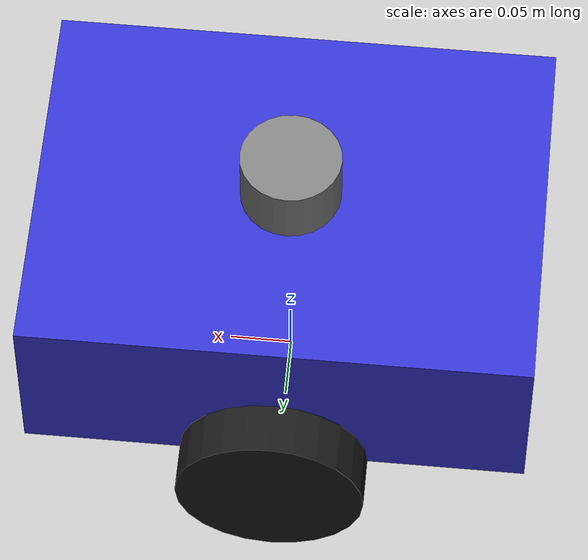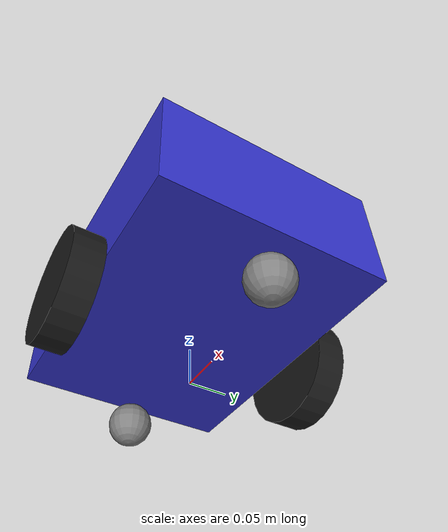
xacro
<?xml version="1.0"?>
<robot xmlns:xacro="http://www.ros.org/wiki/xacro" name="rover">

  <!-- Properties -->
  <xacro:property name="chassis_length" value="0.4"/>
  <xacro:property name="chassis_width" value="0.3"/>
  <xacro:property name="chassis_height" value="0.15"/>
  <xacro:property name="chassis_mass" value="5.0"/>

  <xacro:property name="wheel_radius" value="0.075"/>
  <xacro:property name="wheel_width" value="0.04"/>
  <xacro:property name="wheel_mass" value="0.5"/>
  <xacro:property name="wheel_separation" value="0.34"/>

  <xacro:property name="caster_radius" value="0.03"/>
  <xacro:property name="caster_mass" value="0.1"/>

  <xacro:property name="lidar_height" value="0.05"/>
  <xacro:property name="lidar_radius" value="0.04"/>

  <!-- Materials -->
  <material name="blue">
    <color rgba="0.2 0.2 0.8 1.0"/>
  </material>
  <material name="black">
    <color rgba="0.1 0.1 0.1 1.0"/>
  </material>
  <material name="grey">
    <color rgba="0.5 0.5 0.5 1.0"/>
  </material>

  <!-- Inertia macros -->
  <xacro:macro name="box_inertia" params="m x y z">
    <inertia ixx="${m*(y*y+z*z)/12}" ixy="0" ixz="0"
             iyy="${m*(x*x+z*z)/12}" iyz="0"
             izz="${m*(x*x+y*y)/12}"/>
  </xacro:macro>

  <xacro:macro name="cylinder_inertia" params="m r h">
    <inertia ixx="${m*(3*r*r+h*h)/12}" ixy="0" ixz="0"
             iyy="${m*(3*r*r+h*h)/12}" iyz="0"
             izz="${m*r*r/2}"/>
  </xacro:macro>

  <xacro:macro name="sphere_inertia" params="m r">
    <inertia ixx="${2*m*r*r/5}" ixy="0" ixz="0"
             iyy="${2*m*r*r/5}" iyz="0"
             izz="${2*m*r*r/5}"/>
  </xacro:macro>

  <!-- Base footprint - on the ground -->
  <link name="base_footprint"/>

  <!-- Base link - center of chassis -->
  <link name="base_link">
    <visual>
      <geometry>
        <box size="${chassis_length} ${chassis_width} ${chassis_height}"/>
      </geometry>
      <material name="blue"/>
    </visual>
    <collision>
      <geometry>
        <box size="${chassis_length} ${chassis_width} ${chassis_height}"/>
      </geometry>
    </collision>
    <inertial>
      <mass value="${chassis_mass}"/>
      <xacro:box_inertia m="${chassis_mass}" x="${chassis_length}" y="${chassis_width}" z="${chassis_height}"/>
    </inertial>
  </link>

  <joint name="base_footprint_joint" type="fixed">
    <parent link="base_footprint"/>
    <child link="base_link"/>
    <origin xyz="0 0 ${wheel_radius + chassis_height/2}" rpy="0 0 0"/>
  </joint>

  <!-- Wheel macro -->
  <xacro:macro name="wheel" params="prefix y_offset">
    <link name="${prefix}_wheel">
      <visual>
        <geometry>
          <cylinder radius="${wheel_radius}" length="${wheel_width}"/>
        </geometry>
        <origin xyz="0 0 0" rpy="${pi/2} 0 0"/>
        <material name="black"/>
      </visual>
      <collision>
        <geometry>
          <cylinder radius="${wheel_radius}" length="${wheel_width}"/>
        </geometry>
        <origin xyz="0 0 0" rpy="${pi/2} 0 0"/>
      </collision>
      <inertial>
        <mass value="${wheel_mass}"/>
        <origin xyz="0 0 0" rpy="${pi/2} 0 0"/>
        <xacro:cylinder_inertia m="${wheel_mass}" r="${wheel_radius}" h="${wheel_width}"/>
      </inertial>
    </link>

    <joint name="${prefix}_wheel_joint" type="continuous">
      <parent link="base_link"/>
      <child link="${prefix}_wheel"/>
      <origin xyz="0 ${y_offset} ${-chassis_height/2}" rpy="0 0 0"/>
      <axis xyz="0 1 0"/>
      <dynamics damping="0.1" friction="0.1"/>
    </joint>
  </xacro:macro>

  <!-- Create wheels -->
  <xacro:wheel prefix="left" y_offset="${wheel_separation/2}"/>
  <xacro:wheel prefix="right" y_offset="${-wheel_separation/2}"/>

  <!-- Front caster wheel -->
  <link name="front_caster">
    <visual>
      <geometry>
        <sphere radius="${caster_radius}"/>
      </geometry>
      <material name="grey"/>
    </visual>
    <collision>
      <geometry>
        <sphere radius="${caster_radius}"/>
      </geometry>
    </collision>
    <inertial>
      <mass value="${caster_mass}"/>
      <xacro:sphere_inertia m="${caster_mass}" r="${caster_radius}"/>
    </inertial>
  </link>

  <joint name="front_caster_joint" type="fixed">
    <parent link="base_link"/>
    <child link="front_caster"/>
    <origin xyz="${chassis_length/2 - caster_radius} 0 ${-chassis_height/2 - wheel_radius + caster_radius}" rpy="0 0 0"/>
  </joint>

  <!-- Rear caster wheel -->
  <link name="rear_caster">
    <visual>
      <geometry>
        <sphere radius="${caster_radius}"/>
      </geometry>
      <material name="grey"/>
    </visual>
    <collision>
      <geometry>
        <sphere radius="${caster_radius}"/>
      </geometry>
    </collision>
    <inertial>
      <mass value="${caster_mass}"/>
      <xacro:sphere_inertia m="${caster_mass}" r="${caster_radius}"/>
    </inertial>
  </link>

  <joint name="rear_caster_joint" type="fixed">
    <parent link="base_link"/>
    <child link="rear_caster"/>
    <origin xyz="${-chassis_length/2 + caster_radius} 0 ${-chassis_height/2 - wheel_radius + caster_radius}" rpy="0 0 0"/>
  </joint>

  <!-- LiDAR sensor link -->
  <link name="laser_frame">
    <visual>
      <geometry>
        <cylinder radius="${lidar_radius}" length="${lidar_height}"/>
      </geometry>
      <material name="grey"/>
    </visual>
    <collision>
      <geometry>
        <cylinder radius="${lidar_radius}" length="${lidar_height}"/>
      </geometry>
    </collision>
    <inertial>
      <mass value="0.2"/>
      <xacro:cylinder_inertia m="0.2" r="${lidar_radius}" h="${lidar_height}"/>
    </inertial>
  </link>

  <joint name="laser_joint" type="fixed">
    <parent link="base_link"/>
    <child link="laser_frame"/>
    <origin xyz="0 0 ${chassis_height/2 + lidar_height/2}" rpy="0 0 0"/>
  </joint>

  <!-- ==================== Gazebo Harmonic (gz-sim) Configuration ==================== -->

  <!-- Gazebo material colors -->
  <gazebo reference="base_link">
    <material>Gazebo/Blue</material>
  </gazebo>
  <gazebo reference="left_wheel">
    <material>Gazebo/Black</material>
    <mu1>1.0</mu1>
    <mu2>1.0</mu2>
  </gazebo>
  <gazebo reference="right_wheel">
    <material>Gazebo/Black</material>
    <mu1>1.0</mu1>
    <mu2>1.0</mu2>
  </gazebo>
  <gazebo reference="front_caster">
    <material>Gazebo/Grey</material>
    <mu1>0.0</mu1>
    <mu2>0.0</mu2>
  </gazebo>
  <gazebo reference="rear_caster">
    <material>Gazebo/Grey</material>
    <mu1>0.0</mu1>
    <mu2>0.0</mu2>
  </gazebo>
  <gazebo reference="laser_frame">
    <material>Gazebo/Grey</material>
  </gazebo>

  <!-- Differential Drive Plugin for Gazebo Harmonic -->
  <gazebo>
    <plugin filename="gz-sim-diff-drive-system" name="gz::sim::systems::DiffDrive">
      <left_joint>left_wheel_joint</left_joint>
      <right_joint>right_wheel_joint</right_joint>
      <wheel_separation>${wheel_separation}</wheel_separation>
      <wheel_radius>${wheel_radius}</wheel_radius>
      <max_linear_acceleration>1.0</max_linear_acceleration>
      <max_angular_acceleration>2.0</max_angular_acceleration>
      <odom_publish_frequency>50</odom_publish_frequency>
      <!-- Topics in gz namespace, will be bridged to ROS -->
      <topic>cmd_vel</topic>
      <odom_topic>odom</odom_topic>
      <tf_topic>tf</tf_topic>
      <frame_id>odom</frame_id>
      <child_frame_id>base_footprint</child_frame_id>
    </plugin>
  </gazebo>

  <!-- Joint State Publisher Plugin -->
  <gazebo>
    <plugin filename="gz-sim-joint-state-publisher-system" name="gz::sim::systems::JointStatePublisher">
      <joint_name>left_wheel_joint</joint_name>
      <joint_name>right_wheel_joint</joint_name>
      <topic>joint_states</topic>
    </plugin>
  </gazebo>

  <!-- Pose Publisher Plugin for Ground Truth -->
  <gazebo>
    <plugin filename="gz-sim-pose-publisher-system" name="gz::sim::systems::PosePublisher">
      <publish_link_pose>false</publish_link_pose>
      <publish_collision_pose>false</publish_collision_pose>
      <publish_visual_pose>false</publish_visual_pose>
      <publish_nested_model_pose>false</publish_nested_model_pose>
      <publish_model_pose>true</publish_model_pose>
      <update_frequency>50</update_frequency>
    </plugin>
  </gazebo>

  <!-- 2D LiDAR Sensor -->
  <gazebo reference="laser_frame">
    <sensor name="lidar" type="gpu_lidar">
      <always_on>true</always_on>
      <update_rate>10</update_rate>
      <visualize>true</visualize>
      <topic>scan</topic>
      <gz_frame_id>laser_frame</gz_frame_id>
      <lidar>
        <scan>
          <horizontal>
            <samples>360</samples>
            <resolution>1</resolution>
            <min_angle>-3.14159</min_angle>
            <max_angle>3.14159</max_angle>
          </horizontal>
          <vertical>
            <samples>1</samples>
            <resolution>1</resolution>
            <min_angle>0</min_angle>
            <max_angle>0</max_angle>
          </vertical>
        </scan>
        <range>
          <min>0.1</min>
          <max>10.0</max>
          <resolution>0.01</resolution>
        </range>
        <noise>
          <type>gaussian</type>
          <mean>0.0</mean>
          <stddev>0.01</stddev>
        </noise>
      </lidar>
    </sensor>
  </gazebo>

</robot>
